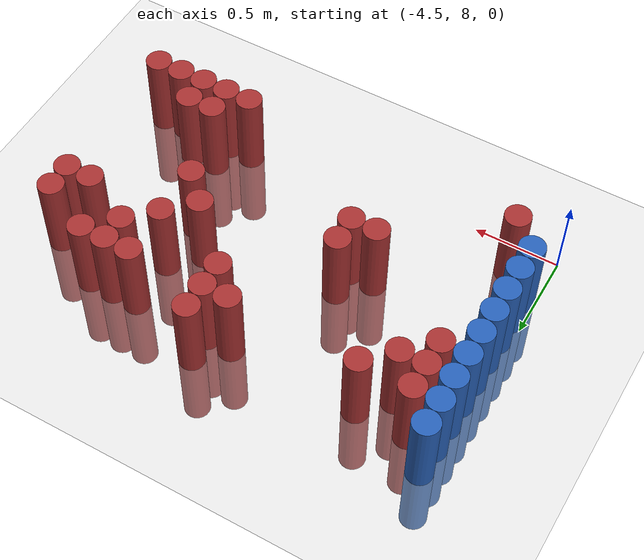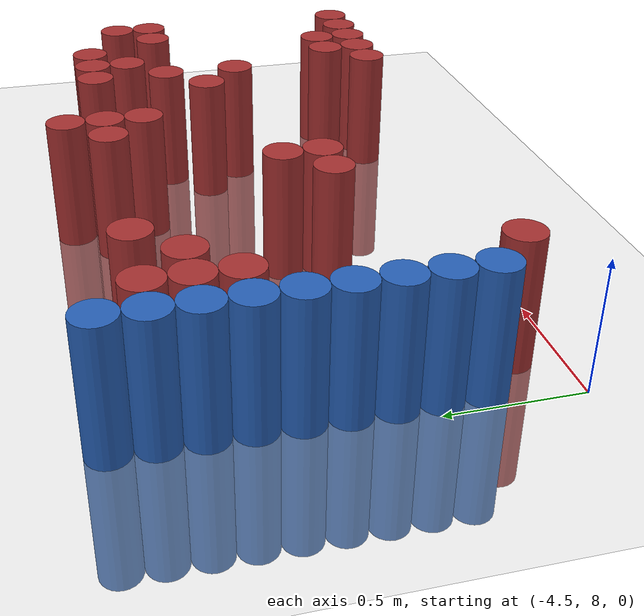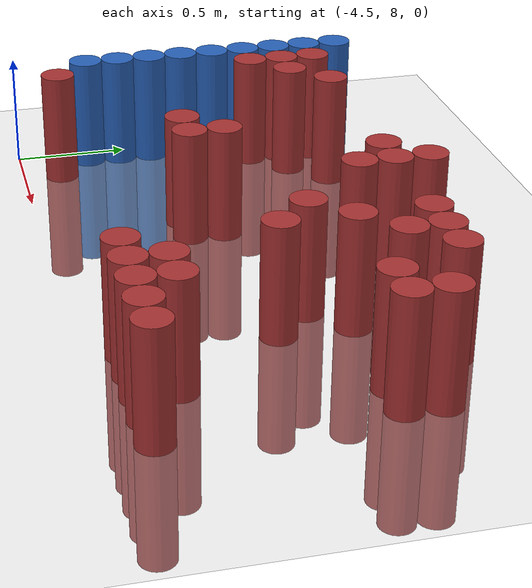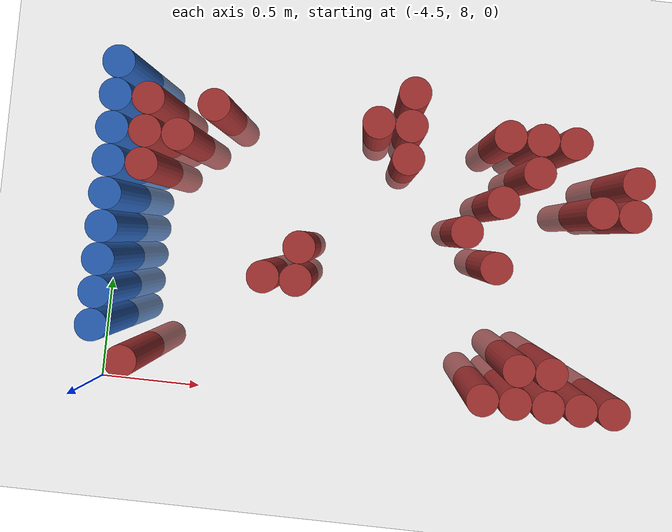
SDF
<sdf version="1.6">
 <world name="default">
  <model name="ground_plane">
   <static>1</static>
   <link name="link">
    <collision name="collision">
     <geometry><plane><normal>0 0 1</normal><size>100 100</size></plane></geometry>
     <surface><friction><ode><mu>100</mu><mu2>50</mu2></ode></friction></surface>
    </collision>
    <visual name="visual">
     <cast_shadows>0</cast_shadows>
     <geometry><plane><normal>0 0 1</normal><size>100 100</size></plane></geometry>
     <material>
      <script><uri>file://media/materials/scripts/gazebo.material</uri><name>Gazebo/Grey</name></script>
     </material>
    </visual>
   </link>
  </model>
  <model name="unit_cylinder_117">
   <static>1</static>
   <pose>-4.425000 8.325000 0.000000 0.000000 0.000000 0.000000</pose>
   <link name="link">
    <inertial>
     <mass>1</mass>
     <inertia><ixx>0.145833</ixx><ixy>0</ixy><ixz>0</ixz><iyy>0.145833</iyy><iyz>0</iyz><izz>0.125</izz></inertia>
    </inertial>
    <collision name="collision">
     <geometry><cylinder><radius>0.075000</radius><length>1</length></cylinder></geometry>
    </collision>
    <visual name="visual">
     <geometry><cylinder><radius>0.075000</radius><length>1</length></cylinder></geometry>
     <material>
      <ambient>0.152000 0.379000 0.720000 1</ambient>
      <diffuse>0.152000 0.379000 0.720000 1</diffuse>
     </material>
     <material>
      <script><name>Gazebo/Grey</name><uri>file://media/materials/scripts/gazebo.material</uri></script>
     </material>
    </visual>
    <sensor name="sensor_contact" type="contact"><contact><collision>collision</collision></contact></sensor>
   </link>
   <plugin filename="gz-sim-touchplugin-system" name="gz::sim::systems::TouchPlugin">
    <target>robot</target>
    <namespace>robot</namespace>
    <time>0.001</time>
    <enabled>true</enabled>
   </plugin>
  </model>
  <model name="unit_cylinder_118">
   <static>1</static>
   <pose>-4.425000 8.475000 0.000000 0.000000 0.000000 0.000000</pose>
   <link name="link">
    <inertial>
     <mass>1</mass>
     <inertia><ixx>0.145833</ixx><ixy>0</ixy><ixz>0</ixz><iyy>0.145833</iyy><iyz>0</iyz><izz>0.125</izz></inertia>
    </inertial>
    <collision name="collision">
     <geometry><cylinder><radius>0.075000</radius><length>1</length></cylinder></geometry>
    </collision>
    <visual name="visual">
     <geometry><cylinder><radius>0.075000</radius><length>1</length></cylinder></geometry>
     <material>
      <ambient>0.152000 0.379000 0.720000 1</ambient>
      <diffuse>0.152000 0.379000 0.720000 1</diffuse>
     </material>
     <material>
      <script><name>Gazebo/Grey</name><uri>file://media/materials/scripts/gazebo.material</uri></script>
     </material>
    </visual>
    <sensor name="sensor_contact" type="contact"><contact><collision>collision</collision></contact></sensor>
   </link>
   <plugin filename="gz-sim-touchplugin-system" name="gz::sim::systems::TouchPlugin">
    <target>robot</target>
    <namespace>robot</namespace>
    <time>0.001</time>
    <enabled>true</enabled>
   </plugin>
  </model>
  <model name="unit_cylinder_119">
   <static>1</static>
   <pose>-4.425000 8.625000 0.000000 0.000000 0.000000 0.000000</pose>
   <link name="link">
    <inertial>
     <mass>1</mass>
     <inertia><ixx>0.145833</ixx><ixy>0</ixy><ixz>0</ixz><iyy>0.145833</iyy><iyz>0</iyz><izz>0.125</izz></inertia>
    </inertial>
    <collision name="collision">
     <geometry><cylinder><radius>0.075000</radius><length>1</length></cylinder></geometry>
    </collision>
    <visual name="visual">
     <geometry><cylinder><radius>0.075000</radius><length>1</length></cylinder></geometry>
     <material>
      <ambient>0.152000 0.379000 0.720000 1</ambient>
      <diffuse>0.152000 0.379000 0.720000 1</diffuse>
     </material>
     <material>
      <script><name>Gazebo/Grey</name><uri>file://media/materials/scripts/gazebo.material</uri></script>
     </material>
    </visual>
    <sensor name="sensor_contact" type="contact"><contact><collision>collision</collision></contact></sensor>
   </link>
   <plugin filename="gz-sim-touchplugin-system" name="gz::sim::systems::TouchPlugin">
    <target>robot</target>
    <namespace>robot</namespace>
    <time>0.001</time>
    <enabled>true</enabled>
   </plugin>
  </model>
  <model name="unit_cylinder_120">
   <static>1</static>
   <pose>-4.425000 8.775000 0.000000 0.000000 0.000000 0.000000</pose>
   <link name="link">
    <inertial>
     <mass>1</mass>
     <inertia><ixx>0.145833</ixx><ixy>0</ixy><ixz>0</ixz><iyy>0.145833</iyy><iyz>0</iyz><izz>0.125</izz></inertia>
    </inertial>
    <collision name="collision">
     <geometry><cylinder><radius>0.075000</radius><length>1</length></cylinder></geometry>
    </collision>
    <visual name="visual">
     <geometry><cylinder><radius>0.075000</radius><length>1</length></cylinder></geometry>
     <material>
      <ambient>0.152000 0.379000 0.720000 1</ambient>
      <diffuse>0.152000 0.379000 0.720000 1</diffuse>
     </material>
     <material>
      <script><name>Gazebo/Grey</name><uri>file://media/materials/scripts/gazebo.material</uri></script>
     </material>
    </visual>
    <sensor name="sensor_contact" type="contact"><contact><collision>collision</collision></contact></sensor>
   </link>
   <plugin filename="gz-sim-touchplugin-system" name="gz::sim::systems::TouchPlugin">
    <target>robot</target>
    <namespace>robot</namespace>
    <time>0.001</time>
    <enabled>true</enabled>
   </plugin>
  </model>
  <model name="unit_cylinder_121">
   <static>1</static>
   <pose>-4.425000 8.925000 0.000000 0.000000 0.000000 0.000000</pose>
   <link name="link">
    <inertial>
     <mass>1</mass>
     <inertia><ixx>0.145833</ixx><ixy>0</ixy><ixz>0</ixz><iyy>0.145833</iyy><iyz>0</iyz><izz>0.125</izz></inertia>
    </inertial>
    <collision name="collision">
     <geometry><cylinder><radius>0.075000</radius><length>1</length></cylinder></geometry>
    </collision>
    <visual name="visual">
     <geometry><cylinder><radius>0.075000</radius><length>1</length></cylinder></geometry>
     <material>
      <ambient>0.152000 0.379000 0.720000 1</ambient>
      <diffuse>0.152000 0.379000 0.720000 1</diffuse>
     </material>
     <material>
      <script><name>Gazebo/Grey</name><uri>file://media/materials/scripts/gazebo.material</uri></script>
     </material>
    </visual>
    <sensor name="sensor_contact" type="contact"><contact><collision>collision</collision></contact></sensor>
   </link>
   <plugin filename="gz-sim-touchplugin-system" name="gz::sim::systems::TouchPlugin">
    <target>robot</target>
    <namespace>robot</namespace>
    <time>0.001</time>
    <enabled>true</enabled>
   </plugin>
  </model>
  <model name="unit_cylinder_122">
   <static>1</static>
   <pose>-4.425000 9.075000 0.000000 0.000000 0.000000 0.000000</pose>
   <link name="link">
    <inertial>
     <mass>1</mass>
     <inertia><ixx>0.145833</ixx><ixy>0</ixy><ixz>0</ixz><iyy>0.145833</iyy><iyz>0</iyz><izz>0.125</izz></inertia>
    </inertial>
    <collision name="collision">
     <geometry><cylinder><radius>0.075000</radius><length>1</length></cylinder></geometry>
    </collision>
    <visual name="visual">
     <geometry><cylinder><radius>0.075000</radius><length>1</length></cylinder></geometry>
     <material>
      <ambient>0.152000 0.379000 0.720000 1</ambient>
      <diffuse>0.152000 0.379000 0.720000 1</diffuse>
     </material>
     <material>
      <script><name>Gazebo/Grey</name><uri>file://media/materials/scripts/gazebo.material</uri></script>
     </material>
    </visual>
    <sensor name="sensor_contact" type="contact"><contact><collision>collision</collision></contact></sensor>
   </link>
   <plugin filename="gz-sim-touchplugin-system" name="gz::sim::systems::TouchPlugin">
    <target>robot</target>
    <namespace>robot</namespace>
    <time>0.001</time>
    <enabled>true</enabled>
   </plugin>
  </model>
  <model name="unit_cylinder_123">
   <static>1</static>
   <pose>-4.425000 9.225000 0.000000 0.000000 0.000000 0.000000</pose>
   <link name="link">
    <inertial>
     <mass>1</mass>
     <inertia><ixx>0.145833</ixx><ixy>0</ixy><ixz>0</ixz><iyy>0.145833</iyy><iyz>0</iyz><izz>0.125</izz></inertia>
    </inertial>
    <collision name="collision">
     <geometry><cylinder><radius>0.075000</radius><length>1</length></cylinder></geometry>
    </collision>
    <visual name="visual">
     <geometry><cylinder><radius>0.075000</radius><length>1</length></cylinder></geometry>
     <material>
      <ambient>0.152000 0.379000 0.720000 1</ambient>
      <diffuse>0.152000 0.379000 0.720000 1</diffuse>
     </material>
     <material>
      <script><name>Gazebo/Grey</name><uri>file://media/materials/scripts/gazebo.material</uri></script>
     </material>
    </visual>
    <sensor name="sensor_contact" type="contact"><contact><collision>collision</collision></contact></sensor>
   </link>
   <plugin filename="gz-sim-touchplugin-system" name="gz::sim::systems::TouchPlugin">
    <target>robot</target>
    <namespace>robot</namespace>
    <time>0.001</time>
    <enabled>true</enabled>
   </plugin>
  </model>
  <model name="unit_cylinder_124">
   <static>1</static>
   <pose>-4.425000 9.375000 0.000000 0.000000 0.000000 0.000000</pose>
   <link name="link">
    <inertial>
     <mass>1</mass>
     <inertia><ixx>0.145833</ixx><ixy>0</ixy><ixz>0</ixz><iyy>0.145833</iyy><iyz>0</iyz><izz>0.125</izz></inertia>
    </inertial>
    <collision name="collision">
     <geometry><cylinder><radius>0.075000</radius><length>1</length></cylinder></geometry>
    </collision>
    <visual name="visual">
     <geometry><cylinder><radius>0.075000</radius><length>1</length></cylinder></geometry>
     <material>
      <ambient>0.152000 0.379000 0.720000 1</ambient>
      <diffuse>0.152000 0.379000 0.720000 1</diffuse>
     </material>
     <material>
      <script><name>Gazebo/Grey</name><uri>file://media/materials/scripts/gazebo.material</uri></script>
     </material>
    </visual>
    <sensor name="sensor_contact" type="contact"><contact><collision>collision</collision></contact></sensor>
   </link>
   <plugin filename="gz-sim-touchplugin-system" name="gz::sim::systems::TouchPlugin">
    <target>robot</target>
    <namespace>robot</namespace>
    <time>0.001</time>
    <enabled>true</enabled>
   </plugin>
  </model>
  <model name="unit_cylinder_125">
   <static>1</static>
   <pose>-4.425000 9.525000 0.000000 0.000000 0.000000 0.000000</pose>
   <link name="link">
    <inertial>
     <mass>1</mass>
     <inertia><ixx>0.145833</ixx><ixy>0</ixy><ixz>0</ixz><iyy>0.145833</iyy><iyz>0</iyz><izz>0.125</izz></inertia>
    </inertial>
    <collision name="collision">
     <geometry><cylinder><radius>0.075000</radius><length>1</length></cylinder></geometry>
    </collision>
    <visual name="visual">
     <geometry><cylinder><radius>0.075000</radius><length>1</length></cylinder></geometry>
     <material>
      <ambient>0.152000 0.379000 0.720000 1</ambient>
      <diffuse>0.152000 0.379000 0.720000 1</diffuse>
     </material>
     <material>
      <script><name>Gazebo/Grey</name><uri>file://media/materials/scripts/gazebo.material</uri></script>
     </material>
    </visual>
    <sensor name="sensor_contact" type="contact"><contact><collision>collision</collision></contact></sensor>
   </link>
   <plugin filename="gz-sim-touchplugin-system" name="gz::sim::systems::TouchPlugin">
    <target>robot</target>
    <namespace>robot</namespace>
    <time>0.001</time>
    <enabled>true</enabled>
   </plugin>
  </model>
  <model name="unit_cylinder_138">
   <static>1</static>
   <pose>-4.275000 8.175000 0.000000 0.000000 0.000000 0.000000</pose>
   <link name="link">
    <inertial>
     <mass>1</mass>
     <inertia><ixx>0.145833</ixx><ixy>0</ixy><ixz>0</ixz><iyy>0.145833</iyy><iyz>0</iyz><izz>0.125</izz></inertia>
    </inertial>
    <collision name="collision">
     <geometry><cylinder><radius>0.075000</radius><length>1</length></cylinder></geometry>
    </collision>
    <visual name="visual">
     <geometry><cylinder><radius>0.075000</radius><length>1</length></cylinder></geometry>
     <material>
      <ambient>0.648000 0.192000 0.192000 1</ambient>
      <diffuse>0.648000 0.192000 0.192000 1</diffuse>
     </material>
     <material>
      <script><name>Gazebo/Grey</name><uri>file://media/materials/scripts/gazebo.material</uri></script>
     </material>
    </visual>
    <sensor name="sensor_contact" type="contact"><contact><collision>collision</collision></contact></sensor>
   </link>
   <plugin filename="gz-sim-touchplugin-system" name="gz::sim::systems::TouchPlugin">
    <target>robot</target>
    <namespace>robot</namespace>
    <time>0.001</time>
    <enabled>true</enabled>
   </plugin>
  </model>
  <model name="unit_cylinder_139">
   <static>1</static>
   <pose>-4.275000 9.075000 0.000000 0.000000 0.000000 0.000000</pose>
   <link name="link">
    <inertial>
     <mass>1</mass>
     <inertia><ixx>0.145833</ixx><ixy>0</ixy><ixz>0</ixz><iyy>0.145833</iyy><iyz>0</iyz><izz>0.125</izz></inertia>
    </inertial>
    <collision name="collision">
     <geometry><cylinder><radius>0.075000</radius><length>1</length></cylinder></geometry>
    </collision>
    <visual name="visual">
     <geometry><cylinder><radius>0.075000</radius><length>1</length></cylinder></geometry>
     <material>
      <ambient>0.648000 0.192000 0.192000 1</ambient>
      <diffuse>0.648000 0.192000 0.192000 1</diffuse>
     </material>
     <material>
      <script><name>Gazebo/Grey</name><uri>file://media/materials/scripts/gazebo.material</uri></script>
     </material>
    </visual>
    <sensor name="sensor_contact" type="contact"><contact><collision>collision</collision></contact></sensor>
   </link>
   <plugin filename="gz-sim-touchplugin-system" name="gz::sim::systems::TouchPlugin">
    <target>robot</target>
    <namespace>robot</namespace>
    <time>0.001</time>
    <enabled>true</enabled>
   </plugin>
  </model>
  <model name="unit_cylinder_140">
   <static>1</static>
   <pose>-4.275000 9.225000 0.000000 0.000000 0.000000 0.000000</pose>
   <link name="link">
    <inertial>
     <mass>1</mass>
     <inertia><ixx>0.145833</ixx><ixy>0</ixy><ixz>0</ixz><iyy>0.145833</iyy><iyz>0</iyz><izz>0.125</izz></inertia>
    </inertial>
    <collision name="collision">
     <geometry><cylinder><radius>0.075000</radius><length>1</length></cylinder></geometry>
    </collision>
    <visual name="visual">
     <geometry><cylinder><radius>0.075000</radius><length>1</length></cylinder></geometry>
     <material>
      <ambient>0.648000 0.192000 0.192000 1</ambient>
      <diffuse>0.648000 0.192000 0.192000 1</diffuse>
     </material>
     <material>
      <script><name>Gazebo/Grey</name><uri>file://media/materials/scripts/gazebo.material</uri></script>
     </material>
    </visual>
    <sensor name="sensor_contact" type="contact"><contact><collision>collision</collision></contact></sensor>
   </link>
   <plugin filename="gz-sim-touchplugin-system" name="gz::sim::systems::TouchPlugin">
    <target>robot</target>
    <namespace>robot</namespace>
    <time>0.001</time>
    <enabled>true</enabled>
   </plugin>
  </model>
  <model name="unit_cylinder_141">
   <static>1</static>
   <pose>-4.275000 9.375000 0.000000 0.000000 0.000000 0.000000</pose>
   <link name="link">
    <inertial>
     <mass>1</mass>
     <inertia><ixx>0.145833</ixx><ixy>0</ixy><ixz>0</ixz><iyy>0.145833</iyy><iyz>0</iyz><izz>0.125</izz></inertia>
    </inertial>
    <collision name="collision">
     <geometry><cylinder><radius>0.075000</radius><length>1</length></cylinder></geometry>
    </collision>
    <visual name="visual">
     <geometry><cylinder><radius>0.075000</radius><length>1</length></cylinder></geometry>
     <material>
      <ambient>0.648000 0.192000 0.192000 1</ambient>
      <diffuse>0.648000 0.192000 0.192000 1</diffuse>
     </material>
     <material>
      <script><name>Gazebo/Grey</name><uri>file://media/materials/scripts/gazebo.material</uri></script>
     </material>
    </visual>
    <sensor name="sensor_contact" type="contact"><contact><collision>collision</collision></contact></sensor>
   </link>
   <plugin filename="gz-sim-touchplugin-system" name="gz::sim::systems::TouchPlugin">
    <target>robot</target>
    <namespace>robot</namespace>
    <time>0.001</time>
    <enabled>true</enabled>
   </plugin>
  </model>
  <model name="unit_cylinder_144">
   <static>1</static>
   <pose>-4.125000 9.225000 0.000000 0.000000 0.000000 0.000000</pose>
   <link name="link">
    <inertial>
     <mass>1</mass>
     <inertia><ixx>0.145833</ixx><ixy>0</ixy><ixz>0</ixz><iyy>0.145833</iyy><iyz>0</iyz><izz>0.125</izz></inertia>
    </inertial>
    <collision name="collision">
     <geometry><cylinder><radius>0.075000</radius><length>1</length></cylinder></geometry>
    </collision>
    <visual name="visual">
     <geometry><cylinder><radius>0.075000</radius><length>1</length></cylinder></geometry>
     <material>
      <ambient>0.648000 0.192000 0.192000 1</ambient>
      <diffuse>0.648000 0.192000 0.192000 1</diffuse>
     </material>
     <material>
      <script><name>Gazebo/Grey</name><uri>file://media/materials/scripts/gazebo.material</uri></script>
     </material>
    </visual>
    <sensor name="sensor_contact" type="contact"><contact><collision>collision</collision></contact></sensor>
   </link>
   <plugin filename="gz-sim-touchplugin-system" name="gz::sim::systems::TouchPlugin">
    <target>robot</target>
    <namespace>robot</namespace>
    <time>0.001</time>
    <enabled>true</enabled>
   </plugin>
  </model>
  <model name="unit_cylinder_145">
   <static>1</static>
   <pose>-3.975000 9.375000 0.000000 0.000000 0.000000 0.000000</pose>
   <link name="link">
    <inertial>
     <mass>1</mass>
     <inertia><ixx>0.145833</ixx><ixy>0</ixy><ixz>0</ixz><iyy>0.145833</iyy><iyz>0</iyz><izz>0.125</izz></inertia>
    </inertial>
    <collision name="collision">
     <geometry><cylinder><radius>0.075000</radius><length>1</length></cylinder></geometry>
    </collision>
    <visual name="visual">
     <geometry><cylinder><radius>0.075000</radius><length>1</length></cylinder></geometry>
     <material>
      <ambient>0.648000 0.192000 0.192000 1</ambient>
      <diffuse>0.648000 0.192000 0.192000 1</diffuse>
     </material>
     <material>
      <script><name>Gazebo/Grey</name><uri>file://media/materials/scripts/gazebo.material</uri></script>
     </material>
    </visual>
    <sensor name="sensor_contact" type="contact"><contact><collision>collision</collision></contact></sensor>
   </link>
   <plugin filename="gz-sim-touchplugin-system" name="gz::sim::systems::TouchPlugin">
    <target>robot</target>
    <namespace>robot</namespace>
    <time>0.001</time>
    <enabled>true</enabled>
   </plugin>
  </model>
  <model name="unit_cylinder_156">
   <static>1</static>
   <pose>-3.675000 8.625000 0.000000 0.000000 0.000000 0.000000</pose>
   <link name="link">
    <inertial>
     <mass>1</mass>
     <inertia><ixx>0.145833</ixx><ixy>0</ixy><ixz>0</ixz><iyy>0.145833</iyy><iyz>0</iyz><izz>0.125</izz></inertia>
    </inertial>
    <collision name="collision">
     <geometry><cylinder><radius>0.075000</radius><length>1</length></cylinder></geometry>
    </collision>
    <visual name="visual">
     <geometry><cylinder><radius>0.075000</radius><length>1</length></cylinder></geometry>
     <material>
      <ambient>0.648000 0.192000 0.192000 1</ambient>
      <diffuse>0.648000 0.192000 0.192000 1</diffuse>
     </material>
     <material>
      <script><name>Gazebo/Grey</name><uri>file://media/materials/scripts/gazebo.material</uri></script>
     </material>
    </visual>
    <sensor name="sensor_contact" type="contact"><contact><collision>collision</collision></contact></sensor>
   </link>
   <plugin filename="gz-sim-touchplugin-system" name="gz::sim::systems::TouchPlugin">
    <target>robot</target>
    <namespace>robot</namespace>
    <time>0.001</time>
    <enabled>true</enabled>
   </plugin>
  </model>
  <model name="unit_cylinder_164">
   <static>1</static>
   <pose>-3.525000 8.625000 0.000000 0.000000 0.000000 0.000000</pose>
   <link name="link">
    <inertial>
     <mass>1</mass>
     <inertia><ixx>0.145833</ixx><ixy>0</ixy><ixz>0</ixz><iyy>0.145833</iyy><iyz>0</iyz><izz>0.125</izz></inertia>
    </inertial>
    <collision name="collision">
     <geometry><cylinder><radius>0.075000</radius><length>1</length></cylinder></geometry>
    </collision>
    <visual name="visual">
     <geometry><cylinder><radius>0.075000</radius><length>1</length></cylinder></geometry>
     <material>
      <ambient>0.648000 0.192000 0.192000 1</ambient>
      <diffuse>0.648000 0.192000 0.192000 1</diffuse>
     </material>
     <material>
      <script><name>Gazebo/Grey</name><uri>file://media/materials/scripts/gazebo.material</uri></script>
     </material>
    </visual>
    <sensor name="sensor_contact" type="contact"><contact><collision>collision</collision></contact></sensor>
   </link>
   <plugin filename="gz-sim-touchplugin-system" name="gz::sim::systems::TouchPlugin">
    <target>robot</target>
    <namespace>robot</namespace>
    <time>0.001</time>
    <enabled>true</enabled>
   </plugin>
  </model>
  <model name="unit_cylinder_165">
   <static>1</static>
   <pose>-3.525000 8.775000 0.000000 0.000000 0.000000 0.000000</pose>
   <link name="link">
    <inertial>
     <mass>1</mass>
     <inertia><ixx>0.145833</ixx><ixy>0</ixy><ixz>0</ixz><iyy>0.145833</iyy><iyz>0</iyz><izz>0.125</izz></inertia>
    </inertial>
    <collision name="collision">
     <geometry><cylinder><radius>0.075000</radius><length>1</length></cylinder></geometry>
    </collision>
    <visual name="visual">
     <geometry><cylinder><radius>0.075000</radius><length>1</length></cylinder></geometry>
     <material>
      <ambient>0.648000 0.192000 0.192000 1</ambient>
      <diffuse>0.648000 0.192000 0.192000 1</diffuse>
     </material>
     <material>
      <script><name>Gazebo/Grey</name><uri>file://media/materials/scripts/gazebo.material</uri></script>
     </material>
    </visual>
    <sensor name="sensor_contact" type="contact"><contact><collision>collision</collision></contact></sensor>
   </link>
   <plugin filename="gz-sim-touchplugin-system" name="gz::sim::systems::TouchPlugin">
    <target>robot</target>
    <namespace>robot</namespace>
    <time>0.001</time>
    <enabled>true</enabled>
   </plugin>
  </model>
  <model name="unit_cylinder_174">
   <static>1</static>
   <pose>-3.225000 9.375000 0.000000 0.000000 0.000000 0.000000</pose>
   <link name="link">
    <inertial>
     <mass>1</mass>
     <inertia><ixx>0.145833</ixx><ixy>0</ixy><ixz>0</ixz><iyy>0.145833</iyy><iyz>0</iyz><izz>0.125</izz></inertia>
    </inertial>
    <collision name="collision">
     <geometry><cylinder><radius>0.075000</radius><length>1</length></cylinder></geometry>
    </collision>
    <visual name="visual">
     <geometry><cylinder><radius>0.075000</radius><length>1</length></cylinder></geometry>
     <material>
      <ambient>0.648000 0.192000 0.192000 1</ambient>
      <diffuse>0.648000 0.192000 0.192000 1</diffuse>
     </material>
     <material>
      <script><name>Gazebo/Grey</name><uri>file://media/materials/scripts/gazebo.material</uri></script>
     </material>
    </visual>
    <sensor name="sensor_contact" type="contact"><contact><collision>collision</collision></contact></sensor>
   </link>
   <plugin filename="gz-sim-touchplugin-system" name="gz::sim::systems::TouchPlugin">
    <target>robot</target>
    <namespace>robot</namespace>
    <time>0.001</time>
    <enabled>true</enabled>
   </plugin>
  </model>
  <model name="unit_cylinder_179">
   <static>1</static>
   <pose>-3.075000 9.225000 0.000000 0.000000 0.000000 0.000000</pose>
   <link name="link">
    <inertial>
     <mass>1</mass>
     <inertia><ixx>0.145833</ixx><ixy>0</ixy><ixz>0</ixz><iyy>0.145833</iyy><iyz>0</iyz><izz>0.125</izz></inertia>
    </inertial>
    <collision name="collision">
     <geometry><cylinder><radius>0.075000</radius><length>1</length></cylinder></geometry>
    </collision>
    <visual name="visual">
     <geometry><cylinder><radius>0.075000</radius><length>1</length></cylinder></geometry>
     <material>
      <ambient>0.648000 0.192000 0.192000 1</ambient>
      <diffuse>0.648000 0.192000 0.192000 1</diffuse>
     </material>
     <material>
      <script><name>Gazebo/Grey</name><uri>file://media/materials/scripts/gazebo.material</uri></script>
     </material>
    </visual>
    <sensor name="sensor_contact" type="contact"><contact><collision>collision</collision></contact></sensor>
   </link>
   <plugin filename="gz-sim-touchplugin-system" name="gz::sim::systems::TouchPlugin">
    <target>robot</target>
    <namespace>robot</namespace>
    <time>0.001</time>
    <enabled>true</enabled>
   </plugin>
  </model>
  <model name="unit_cylinder_180">
   <static>1</static>
   <pose>-3.075000 9.375000 0.000000 0.000000 0.000000 0.000000</pose>
   <link name="link">
    <inertial>
     <mass>1</mass>
     <inertia><ixx>0.145833</ixx><ixy>0</ixy><ixz>0</ixz><iyy>0.145833</iyy><iyz>0</iyz><izz>0.125</izz></inertia>
    </inertial>
    <collision name="collision">
     <geometry><cylinder><radius>0.075000</radius><length>1</length></cylinder></geometry>
    </collision>
    <visual name="visual">
     <geometry><cylinder><radius>0.075000</radius><length>1</length></cylinder></geometry>
     <material>
      <ambient>0.648000 0.192000 0.192000 1</ambient>
      <diffuse>0.648000 0.192000 0.192000 1</diffuse>
     </material>
     <material>
      <script><name>Gazebo/Grey</name><uri>file://media/materials/scripts/gazebo.material</uri></script>
     </material>
    </visual>
    <sensor name="sensor_contact" type="contact"><contact><collision>collision</collision></contact></sensor>
   </link>
   <plugin filename="gz-sim-touchplugin-system" name="gz::sim::systems::TouchPlugin">
    <target>robot</target>
    <namespace>robot</namespace>
    <time>0.001</time>
    <enabled>true</enabled>
   </plugin>
  </model>
  <model name="unit_cylinder_181">
   <static>1</static>
   <pose>-3.075000 9.525000 0.000000 0.000000 0.000000 0.000000</pose>
   <link name="link">
    <inertial>
     <mass>1</mass>
     <inertia><ixx>0.145833</ixx><ixy>0</ixy><ixz>0</ixz><iyy>0.145833</iyy><iyz>0</iyz><izz>0.125</izz></inertia>
    </inertial>
    <collision name="collision">
     <geometry><cylinder><radius>0.075000</radius><length>1</length></cylinder></geometry>
    </collision>
    <visual name="visual">
     <geometry><cylinder><radius>0.075000</radius><length>1</length></cylinder></geometry>
     <material>
      <ambient>0.648000 0.192000 0.192000 1</ambient>
      <diffuse>0.648000 0.192000 0.192000 1</diffuse>
     </material>
     <material>
      <script><name>Gazebo/Grey</name><uri>file://media/materials/scripts/gazebo.material</uri></script>
     </material>
    </visual>
    <sensor name="sensor_contact" type="contact"><contact><collision>collision</collision></contact></sensor>
   </link>
   <plugin filename="gz-sim-touchplugin-system" name="gz::sim::systems::TouchPlugin">
    <target>robot</target>
    <namespace>robot</namespace>
    <time>0.001</time>
    <enabled>true</enabled>
   </plugin>
  </model>
  <model name="unit_cylinder_187">
   <static>1</static>
   <pose>-2.775000 8.925000 0.000000 0.000000 0.000000 0.000000</pose>
   <link name="link">
    <inertial>
     <mass>1</mass>
     <inertia><ixx>0.145833</ixx><ixy>0</ixy><ixz>0</ixz><iyy>0.145833</iyy><iyz>0</iyz><izz>0.125</izz></inertia>
    </inertial>
    <collision name="collision">
     <geometry><cylinder><radius>0.075000</radius><length>1</length></cylinder></geometry>
    </collision>
    <visual name="visual">
     <geometry><cylinder><radius>0.075000</radius><length>1</length></cylinder></geometry>
     <material>
      <ambient>0.648000 0.192000 0.192000 1</ambient>
      <diffuse>0.648000 0.192000 0.192000 1</diffuse>
     </material>
     <material>
      <script><name>Gazebo/Grey</name><uri>file://media/materials/scripts/gazebo.material</uri></script>
     </material>
    </visual>
    <sensor name="sensor_contact" type="contact"><contact><collision>collision</collision></contact></sensor>
   </link>
   <plugin filename="gz-sim-touchplugin-system" name="gz::sim::systems::TouchPlugin">
    <target>robot</target>
    <namespace>robot</namespace>
    <time>0.001</time>
    <enabled>true</enabled>
   </plugin>
  </model>
  <model name="unit_cylinder_191">
   <static>1</static>
   <pose>-2.625000 8.175000 0.000000 0.000000 0.000000 0.000000</pose>
   <link name="link">
    <inertial>
     <mass>1</mass>
     <inertia><ixx>0.145833</ixx><ixy>0</ixy><ixz>0</ixz><iyy>0.145833</iyy><iyz>0</iyz><izz>0.125</izz></inertia>
    </inertial>
    <collision name="collision">
     <geometry><cylinder><radius>0.075000</radius><length>1</length></cylinder></geometry>
    </collision>
    <visual name="visual">
     <geometry><cylinder><radius>0.075000</radius><length>1</length></cylinder></geometry>
     <material>
      <ambient>0.648000 0.192000 0.192000 1</ambient>
      <diffuse>0.648000 0.192000 0.192000 1</diffuse>
     </material>
     <material>
      <script><name>Gazebo/Grey</name><uri>file://media/materials/scripts/gazebo.material</uri></script>
     </material>
    </visual>
    <sensor name="sensor_contact" type="contact"><contact><collision>collision</collision></contact></sensor>
   </link>
   <plugin filename="gz-sim-touchplugin-system" name="gz::sim::systems::TouchPlugin">
    <target>robot</target>
    <namespace>robot</namespace>
    <time>0.001</time>
    <enabled>true</enabled>
   </plugin>
  </model>
  <model name="unit_cylinder_192">
   <static>1</static>
   <pose>-2.625000 8.775000 0.000000 0.000000 0.000000 0.000000</pose>
   <link name="link">
    <inertial>
     <mass>1</mass>
     <inertia><ixx>0.145833</ixx><ixy>0</ixy><ixz>0</ixz><iyy>0.145833</iyy><iyz>0</iyz><izz>0.125</izz></inertia>
    </inertial>
    <collision name="collision">
     <geometry><cylinder><radius>0.075000</radius><length>1</length></cylinder></geometry>
    </collision>
    <visual name="visual">
     <geometry><cylinder><radius>0.075000</radius><length>1</length></cylinder></geometry>
     <material>
      <ambient>0.648000 0.192000 0.192000 1</ambient>
      <diffuse>0.648000 0.192000 0.192000 1</diffuse>
     </material>
     <material>
      <script><name>Gazebo/Grey</name><uri>file://media/materials/scripts/gazebo.material</uri></script>
     </material>
    </visual>
    <sensor name="sensor_contact" type="contact"><contact><collision>collision</collision></contact></sensor>
   </link>
   <plugin filename="gz-sim-touchplugin-system" name="gz::sim::systems::TouchPlugin">
    <target>robot</target>
    <namespace>robot</namespace>
    <time>0.001</time>
    <enabled>true</enabled>
   </plugin>
  </model>
  <model name="unit_cylinder_193">
   <static>1</static>
   <pose>-2.625000 9.075000 0.000000 0.000000 0.000000 0.000000</pose>
   <link name="link">
    <inertial>
     <mass>1</mass>
     <inertia><ixx>0.145833</ixx><ixy>0</ixy><ixz>0</ixz><iyy>0.145833</iyy><iyz>0</iyz><izz>0.125</izz></inertia>
    </inertial>
    <collision name="collision">
     <geometry><cylinder><radius>0.075000</radius><length>1</length></cylinder></geometry>
    </collision>
    <visual name="visual">
     <geometry><cylinder><radius>0.075000</radius><length>1</length></cylinder></geometry>
     <material>
      <ambient>0.648000 0.192000 0.192000 1</ambient>
      <diffuse>0.648000 0.192000 0.192000 1</diffuse>
     </material>
     <material>
      <script><name>Gazebo/Grey</name><uri>file://media/materials/scripts/gazebo.material</uri></script>
     </material>
    </visual>
    <sensor name="sensor_contact" type="contact"><contact><collision>collision</collision></contact></sensor>
   </link>
   <plugin filename="gz-sim-touchplugin-system" name="gz::sim::systems::TouchPlugin">
    <target>robot</target>
    <namespace>robot</namespace>
    <time>0.001</time>
    <enabled>true</enabled>
   </plugin>
  </model>
  <model name="unit_cylinder_194">
   <static>1</static>
   <pose>-2.625000 9.375000 0.000000 0.000000 0.000000 0.000000</pose>
   <link name="link">
    <inertial>
     <mass>1</mass>
     <inertia><ixx>0.145833</ixx><ixy>0</ixy><ixz>0</ixz><iyy>0.145833</iyy><iyz>0</iyz><izz>0.125</izz></inertia>
    </inertial>
    <collision name="collision">
     <geometry><cylinder><radius>0.075000</radius><length>1</length></cylinder></geometry>
    </collision>
    <visual name="visual">
     <geometry><cylinder><radius>0.075000</radius><length>1</length></cylinder></geometry>
     <material>
      <ambient>0.648000 0.192000 0.192000 1</ambient>
      <diffuse>0.648000 0.192000 0.192000 1</diffuse>
     </material>
     <material>
      <script><name>Gazebo/Grey</name><uri>file://media/materials/scripts/gazebo.material</uri></script>
     </material>
    </visual>
    <sensor name="sensor_contact" type="contact"><contact><collision>collision</collision></contact></sensor>
   </link>
   <plugin filename="gz-sim-touchplugin-system" name="gz::sim::systems::TouchPlugin">
    <target>robot</target>
    <namespace>robot</namespace>
    <time>0.001</time>
    <enabled>true</enabled>
   </plugin>
  </model>
  <model name="unit_cylinder_199">
   <static>1</static>
   <pose>-2.475000 8.175000 0.000000 0.000000 0.000000 0.000000</pose>
   <link name="link">
    <inertial>
     <mass>1</mass>
     <inertia><ixx>0.145833</ixx><ixy>0</ixy><ixz>0</ixz><iyy>0.145833</iyy><iyz>0</iyz><izz>0.125</izz></inertia>
    </inertial>
    <collision name="collision">
     <geometry><cylinder><radius>0.075000</radius><length>1</length></cylinder></geometry>
    </collision>
    <visual name="visual">
     <geometry><cylinder><radius>0.075000</radius><length>1</length></cylinder></geometry>
     <material>
      <ambient>0.648000 0.192000 0.192000 1</ambient>
      <diffuse>0.648000 0.192000 0.192000 1</diffuse>
     </material>
     <material>
      <script><name>Gazebo/Grey</name><uri>file://media/materials/scripts/gazebo.material</uri></script>
     </material>
    </visual>
    <sensor name="sensor_contact" type="contact"><contact><collision>collision</collision></contact></sensor>
   </link>
   <plugin filename="gz-sim-touchplugin-system" name="gz::sim::systems::TouchPlugin">
    <target>robot</target>
    <namespace>robot</namespace>
    <time>0.001</time>
    <enabled>true</enabled>
   </plugin>
  </model>
  <model name="unit_cylinder_200">
   <static>1</static>
   <pose>-2.475000 8.325000 0.000000 0.000000 0.000000 0.000000</pose>
   <link name="link">
    <inertial>
     <mass>1</mass>
     <inertia><ixx>0.145833</ixx><ixy>0</ixy><ixz>0</ixz><iyy>0.145833</iyy><iyz>0</iyz><izz>0.125</izz></inertia>
    </inertial>
    <collision name="collision">
     <geometry><cylinder><radius>0.075000</radius><length>1</length></cylinder></geometry>
    </collision>
    <visual name="visual">
     <geometry><cylinder><radius>0.075000</radius><length>1</length></cylinder></geometry>
     <material>
      <ambient>0.648000 0.192000 0.192000 1</ambient>
      <diffuse>0.648000 0.192000 0.192000 1</diffuse>
     </material>
     <material>
      <script><name>Gazebo/Grey</name><uri>file://media/materials/scripts/gazebo.material</uri></script>
     </material>
    </visual>
    <sensor name="sensor_contact" type="contact"><contact><collision>collision</collision></contact></sensor>
   </link>
   <plugin filename="gz-sim-touchplugin-system" name="gz::sim::systems::TouchPlugin">
    <target>robot</target>
    <namespace>robot</namespace>
    <time>0.001</time>
    <enabled>true</enabled>
   </plugin>
  </model>
  <model name="unit_cylinder_201">
   <static>1</static>
   <pose>-2.475000 9.225000 0.000000 0.000000 0.000000 0.000000</pose>
   <link name="link">
    <inertial>
     <mass>1</mass>
     <inertia><ixx>0.145833</ixx><ixy>0</ixy><ixz>0</ixz><iyy>0.145833</iyy><iyz>0</iyz><izz>0.125</izz></inertia>
    </inertial>
    <collision name="collision">
     <geometry><cylinder><radius>0.075000</radius><length>1</length></cylinder></geometry>
    </collision>
    <visual name="visual">
     <geometry><cylinder><radius>0.075000</radius><length>1</length></cylinder></geometry>
     <material>
      <ambient>0.648000 0.192000 0.192000 1</ambient>
      <diffuse>0.648000 0.192000 0.192000 1</diffuse>
     </material>
     <material>
      <script><name>Gazebo/Grey</name><uri>file://media/materials/scripts/gazebo.material</uri></script>
     </material>
    </visual>
    <sensor name="sensor_contact" type="contact"><contact><collision>collision</collision></contact></sensor>
   </link>
   <plugin filename="gz-sim-touchplugin-system" name="gz::sim::systems::TouchPlugin">
    <target>robot</target>
    <namespace>robot</namespace>
    <time>0.001</time>
    <enabled>true</enabled>
   </plugin>
  </model>
  <model name="unit_cylinder_202">
   <static>1</static>
   <pose>-2.475000 9.375000 0.000000 0.000000 0.000000 0.000000</pose>
   <link name="link">
    <inertial>
     <mass>1</mass>
     <inertia><ixx>0.145833</ixx><ixy>0</ixy><ixz>0</ixz><iyy>0.145833</iyy><iyz>0</iyz><izz>0.125</izz></inertia>
    </inertial>
    <collision name="collision">
     <geometry><cylinder><radius>0.075000</radius><length>1</length></cylinder></geometry>
    </collision>
    <visual name="visual">
     <geometry><cylinder><radius>0.075000</radius><length>1</length></cylinder></geometry>
     <material>
      <ambient>0.648000 0.192000 0.192000 1</ambient>
      <diffuse>0.648000 0.192000 0.192000 1</diffuse>
     </material>
     <material>
      <script><name>Gazebo/Grey</name><uri>file://media/materials/scripts/gazebo.material</uri></script>
     </material>
    </visual>
    <sensor name="sensor_contact" type="contact"><contact><collision>collision</collision></contact></sensor>
   </link>
   <plugin filename="gz-sim-touchplugin-system" name="gz::sim::systems::TouchPlugin">
    <target>robot</target>
    <namespace>robot</namespace>
    <time>0.001</time>
    <enabled>true</enabled>
   </plugin>
  </model>
  <model name="unit_cylinder_205">
   <static>1</static>
   <pose>-2.325000 8.175000 0.000000 0.000000 0.000000 0.000000</pose>
   <link name="link">
    <inertial>
     <mass>1</mass>
     <inertia><ixx>0.145833</ixx><ixy>0</ixy><ixz>0</ixz><iyy>0.145833</iyy><iyz>0</iyz><izz>0.125</izz></inertia>
    </inertial>
    <collision name="collision">
     <geometry><cylinder><radius>0.075000</radius><length>1</length></cylinder></geometry>
    </collision>
    <visual name="visual">
     <geometry><cylinder><radius>0.075000</radius><length>1</length></cylinder></geometry>
     <material>
      <ambient>0.648000 0.192000 0.192000 1</ambient>
      <diffuse>0.648000 0.192000 0.192000 1</diffuse>
     </material>
     <material>
      <script><name>Gazebo/Grey</name><uri>file://media/materials/scripts/gazebo.material</uri></script>
     </material>
    </visual>
    <sensor name="sensor_contact" type="contact"><contact><collision>collision</collision></contact></sensor>
   </link>
   <plugin filename="gz-sim-touchplugin-system" name="gz::sim::systems::TouchPlugin">
    <target>robot</target>
    <namespace>robot</namespace>
    <time>0.001</time>
    <enabled>true</enabled>
   </plugin>
  </model>
  <model name="unit_cylinder_206">
   <static>1</static>
   <pose>-2.325000 8.325000 0.000000 0.000000 0.000000 0.000000</pose>
   <link name="link">
    <inertial>
     <mass>1</mass>
     <inertia><ixx>0.145833</ixx><ixy>0</ixy><ixz>0</ixz><iyy>0.145833</iyy><iyz>0</iyz><izz>0.125</izz></inertia>
    </inertial>
    <collision name="collision">
     <geometry><cylinder><radius>0.075000</radius><length>1</length></cylinder></geometry>
    </collision>
    <visual name="visual">
     <geometry><cylinder><radius>0.075000</radius><length>1</length></cylinder></geometry>
     <material>
      <ambient>0.648000 0.192000 0.192000 1</ambient>
      <diffuse>0.648000 0.192000 0.192000 1</diffuse>
     </material>
     <material>
      <script><name>Gazebo/Grey</name><uri>file://media/materials/scripts/gazebo.material</uri></script>
     </material>
    </visual>
    <sensor name="sensor_contact" type="contact"><contact><collision>collision</collision></contact></sensor>
   </link>
   <plugin filename="gz-sim-touchplugin-system" name="gz::sim::systems::TouchPlugin">
    <target>robot</target>
    <namespace>robot</namespace>
    <time>0.001</time>
    <enabled>true</enabled>
   </plugin>
  </model>
  <model name="unit_cylinder_207">
   <static>1</static>
   <pose>-2.325000 9.375000 0.000000 0.000000 0.000000 0.000000</pose>
   <link name="link">
    <inertial>
     <mass>1</mass>
     <inertia><ixx>0.145833</ixx><ixy>0</ixy><ixz>0</ixz><iyy>0.145833</iyy><iyz>0</iyz><izz>0.125</izz></inertia>
    </inertial>
    <collision name="collision">
     <geometry><cylinder><radius>0.075000</radius><length>1</length></cylinder></geometry>
    </collision>
    <visual name="visual">
     <geometry><cylinder><radius>0.075000</radius><length>1</length></cylinder></geometry>
     <material>
      <ambient>0.648000 0.192000 0.192000 1</ambient>
      <diffuse>0.648000 0.192000 0.192000 1</diffuse>
     </material>
     <material>
      <script><name>Gazebo/Grey</name><uri>file://media/materials/scripts/gazebo.material</uri></script>
     </material>
    </visual>
    <sensor name="sensor_contact" type="contact"><contact><collision>collision</collision></contact></sensor>
   </link>
   <plugin filename="gz-sim-touchplugin-system" name="gz::sim::systems::TouchPlugin">
    <target>robot</target>
    <namespace>robot</namespace>
    <time>0.001</time>
    <enabled>true</enabled>
   </plugin>
  </model>
  <model name="unit_cylinder_209">
   <static>1</static>
   <pose>-2.175000 8.175000 0.000000 0.000000 0.000000 0.000000</pose>
   <link name="link">
    <inertial>
     <mass>1</mass>
     <inertia><ixx>0.145833</ixx><ixy>0</ixy><ixz>0</ixz><iyy>0.145833</iyy><iyz>0</iyz><izz>0.125</izz></inertia>
    </inertial>
    <collision name="collision">
     <geometry><cylinder><radius>0.075000</radius><length>1</length></cylinder></geometry>
    </collision>
    <visual name="visual">
     <geometry><cylinder><radius>0.075000</radius><length>1</length></cylinder></geometry>
     <material>
      <ambient>0.648000 0.192000 0.192000 1</ambient>
      <diffuse>0.648000 0.192000 0.192000 1</diffuse>
     </material>
     <material>
      <script><name>Gazebo/Grey</name><uri>file://media/materials/scripts/gazebo.material</uri></script>
     </material>
    </visual>
    <sensor name="sensor_contact" type="contact"><contact><collision>collision</collision></contact></sensor>
   </link>
   <plugin filename="gz-sim-touchplugin-system" name="gz::sim::systems::TouchPlugin">
    <target>robot</target>
    <namespace>robot</namespace>
    <time>0.001</time>
    <enabled>true</enabled>
   </plugin>
  </model>
  <model name="unit_cylinder_210">
   <static>1</static>
   <pose>-2.175000 9.075000 0.000000 0.000000 0.000000 0.000000</pose>
   <link name="link">
    <inertial>
     <mass>1</mass>
     <inertia><ixx>0.145833</ixx><ixy>0</ixy><ixz>0</ixz><iyy>0.145833</iyy><iyz>0</iyz><izz>0.125</izz></inertia>
    </inertial>
    <collision name="collision">
     <geometry><cylinder><radius>0.075000</radius><length>1</length></cylinder></geometry>
    </collision>
    <visual name="visual">
     <geometry><cylinder><radius>0.075000</radius><length>1</length></cylinder></geometry>
     <material>
      <ambient>0.648000 0.192000 0.192000 1</ambient>
      <diffuse>0.648000 0.192000 0.192000 1</diffuse>
     </material>
     <material>
      <script><name>Gazebo/Grey</name><uri>file://media/materials/scripts/gazebo.material</uri></script>
     </material>
    </visual>
    <sensor name="sensor_contact" type="contact"><contact><collision>collision</collision></contact></sensor>
   </link>
   <plugin filename="gz-sim-touchplugin-system" name="gz::sim::systems::TouchPlugin">
    <target>robot</target>
    <namespace>robot</namespace>
    <time>0.001</time>
    <enabled>true</enabled>
   </plugin>
  </model>
  <model name="unit_cylinder_211">
   <static>1</static>
   <pose>-2.025000 8.175000 0.000000 0.000000 0.000000 0.000000</pose>
   <link name="link">
    <inertial>
     <mass>1</mass>
     <inertia><ixx>0.145833</ixx><ixy>0</ixy><ixz>0</ixz><iyy>0.145833</iyy><iyz>0</iyz><izz>0.125</izz></inertia>
    </inertial>
    <collision name="collision">
     <geometry><cylinder><radius>0.075000</radius><length>1</length></cylinder></geometry>
    </collision>
    <visual name="visual">
     <geometry><cylinder><radius>0.075000</radius><length>1</length></cylinder></geometry>
     <material>
      <ambient>0.648000 0.192000 0.192000 1</ambient>
      <diffuse>0.648000 0.192000 0.192000 1</diffuse>
     </material>
     <material>
      <script><name>Gazebo/Grey</name><uri>file://media/materials/scripts/gazebo.material</uri></script>
     </material>
    </visual>
    <sensor name="sensor_contact" type="contact"><contact><collision>collision</collision></contact></sensor>
   </link>
   <plugin filename="gz-sim-touchplugin-system" name="gz::sim::systems::TouchPlugin">
    <target>robot</target>
    <namespace>robot</namespace>
    <time>0.001</time>
    <enabled>true</enabled>
   </plugin>
  </model>
  <model name="unit_cylinder_212">
   <static>1</static>
   <pose>-2.025000 9.075000 0.000000 0.000000 0.000000 0.000000</pose>
   <link name="link">
    <inertial>
     <mass>1</mass>
     <inertia><ixx>0.145833</ixx><ixy>0</ixy><ixz>0</ixz><iyy>0.145833</iyy><iyz>0</iyz><izz>0.125</izz></inertia>
    </inertial>
    <collision name="collision">
     <geometry><cylinder><radius>0.075000</radius><length>1</length></cylinder></geometry>
    </collision>
    <visual name="visual">
     <geometry><cylinder><radius>0.075000</radius><length>1</length></cylinder></geometry>
     <material>
      <ambient>0.648000 0.192000 0.192000 1</ambient>
      <diffuse>0.648000 0.192000 0.192000 1</diffuse>
     </material>
     <material>
      <script><name>Gazebo/Grey</name><uri>file://media/materials/scripts/gazebo.material</uri></script>
     </material>
    </visual>
    <sensor name="sensor_contact" type="contact"><contact><collision>collision</collision></contact></sensor>
   </link>
   <plugin filename="gz-sim-touchplugin-system" name="gz::sim::systems::TouchPlugin">
    <target>robot</target>
    <namespace>robot</namespace>
    <time>0.001</time>
    <enabled>true</enabled>
   </plugin>
  </model>
  <model name="unit_cylinder_213">
   <static>1</static>
   <pose>-2.025000 9.225000 0.000000 0.000000 0.000000 0.000000</pose>
   <link name="link">
    <inertial>
     <mass>1</mass>
     <inertia><ixx>0.145833</ixx><ixy>0</ixy><ixz>0</ixz><iyy>0.145833</iyy><iyz>0</iyz><izz>0.125</izz></inertia>
    </inertial>
    <collision name="collision">
     <geometry><cylinder><radius>0.075000</radius><length>1</length></cylinder></geometry>
    </collision>
    <visual name="visual">
     <geometry><cylinder><radius>0.075000</radius><length>1</length></cylinder></geometry>
     <material>
      <ambient>0.648000 0.192000 0.192000 1</ambient>
      <diffuse>0.648000 0.192000 0.192000 1</diffuse>
     </material>
     <material>
      <script><name>Gazebo/Grey</name><uri>file://media/materials/scripts/gazebo.material</uri></script>
     </material>
    </visual>
    <sensor name="sensor_contact" type="contact"><contact><collision>collision</collision></contact></sensor>
   </link>
   <plugin filename="gz-sim-touchplugin-system" name="gz::sim::systems::TouchPlugin">
    <target>robot</target>
    <namespace>robot</namespace>
    <time>0.001</time>
    <enabled>true</enabled>
   </plugin>
  </model>
 </world>
</sdf>
